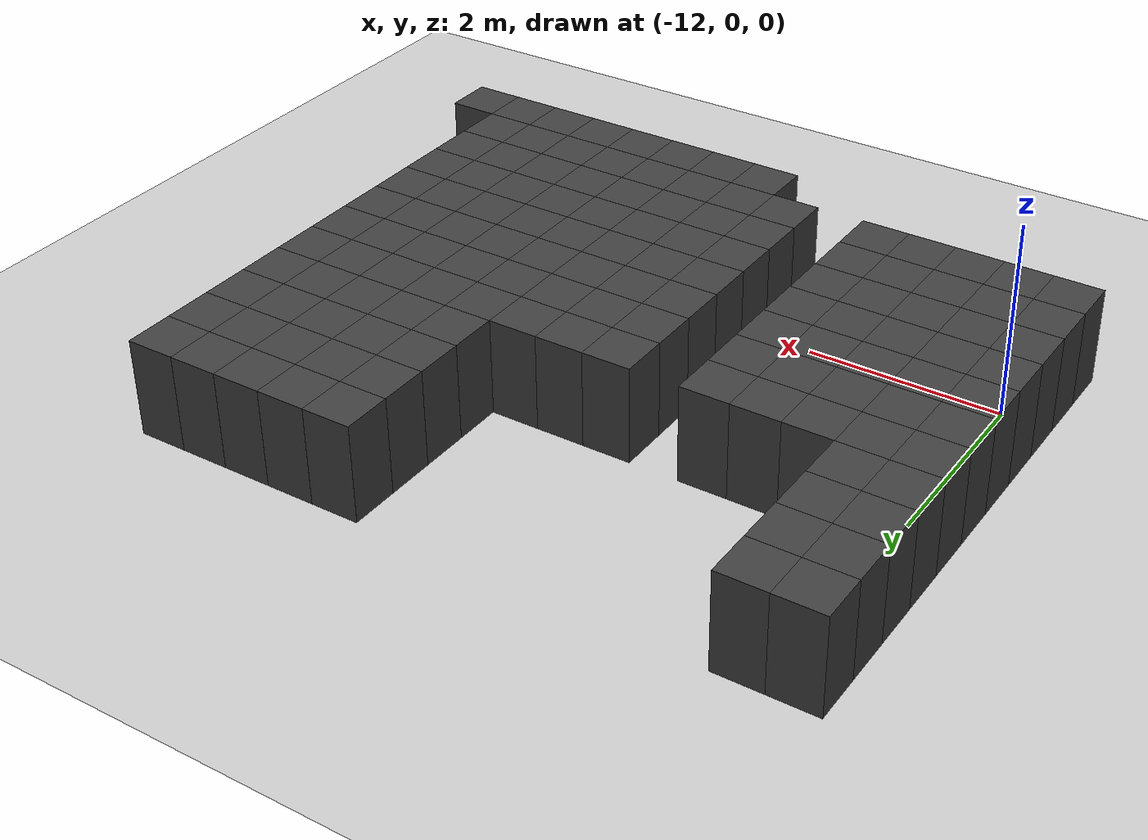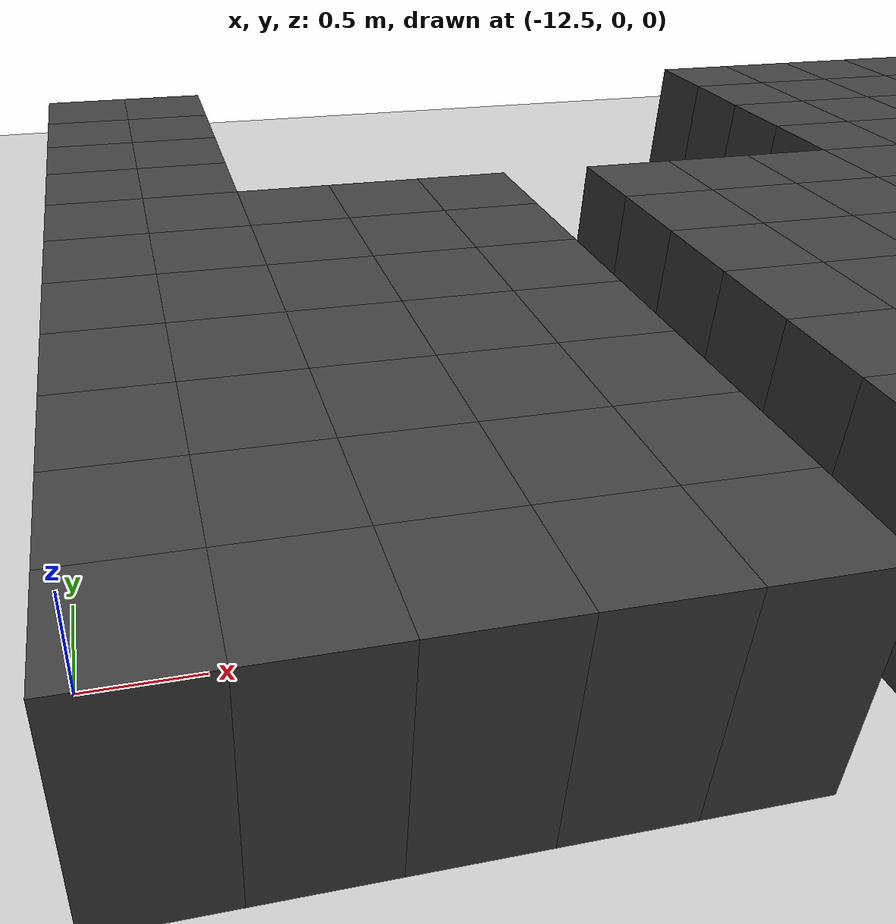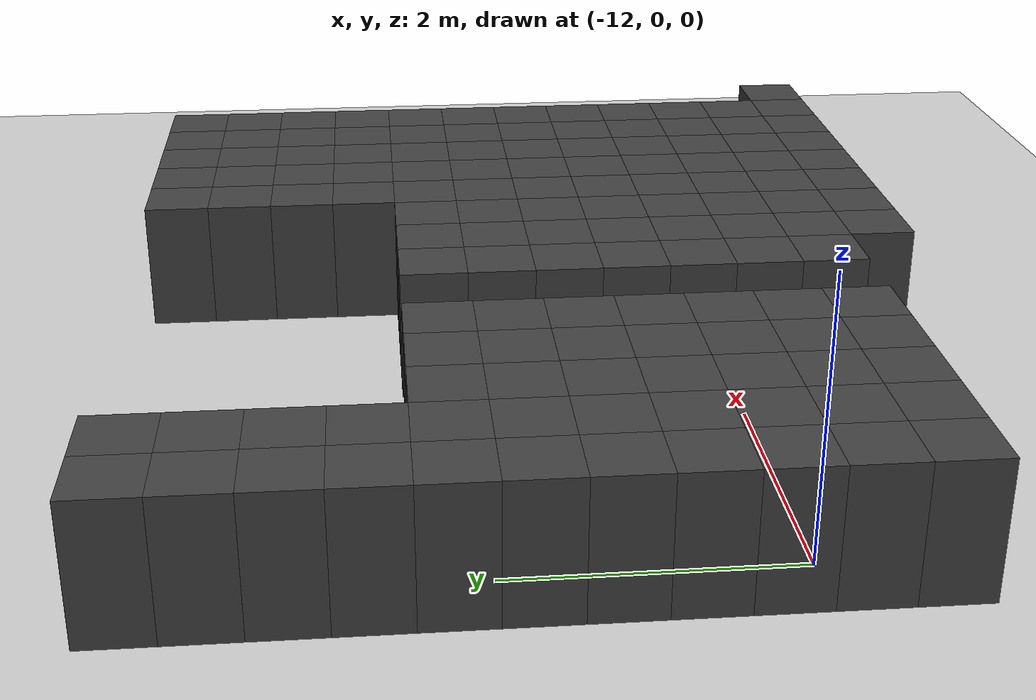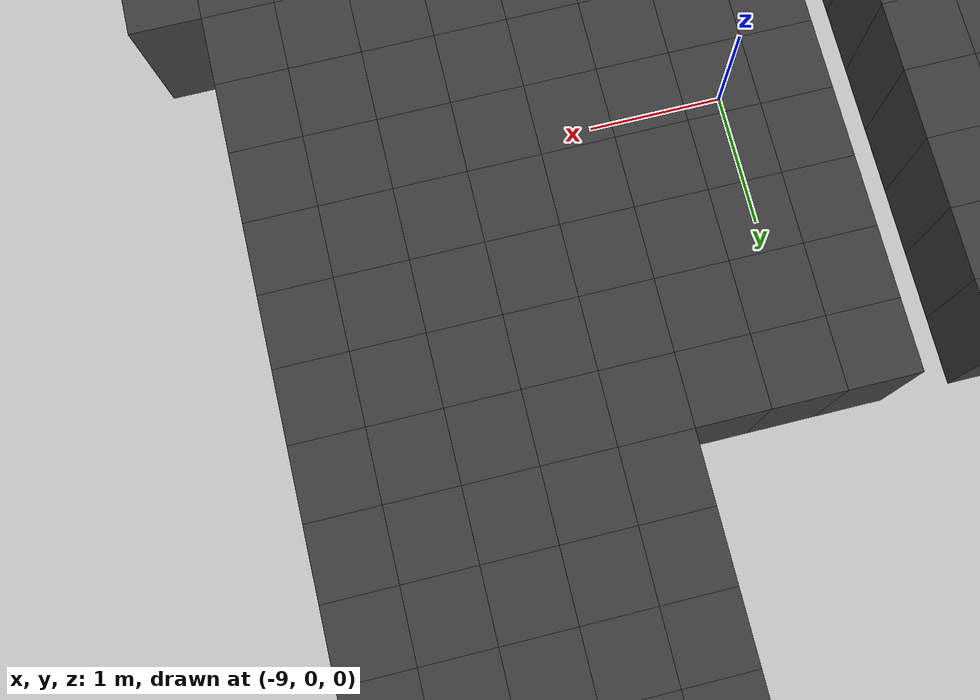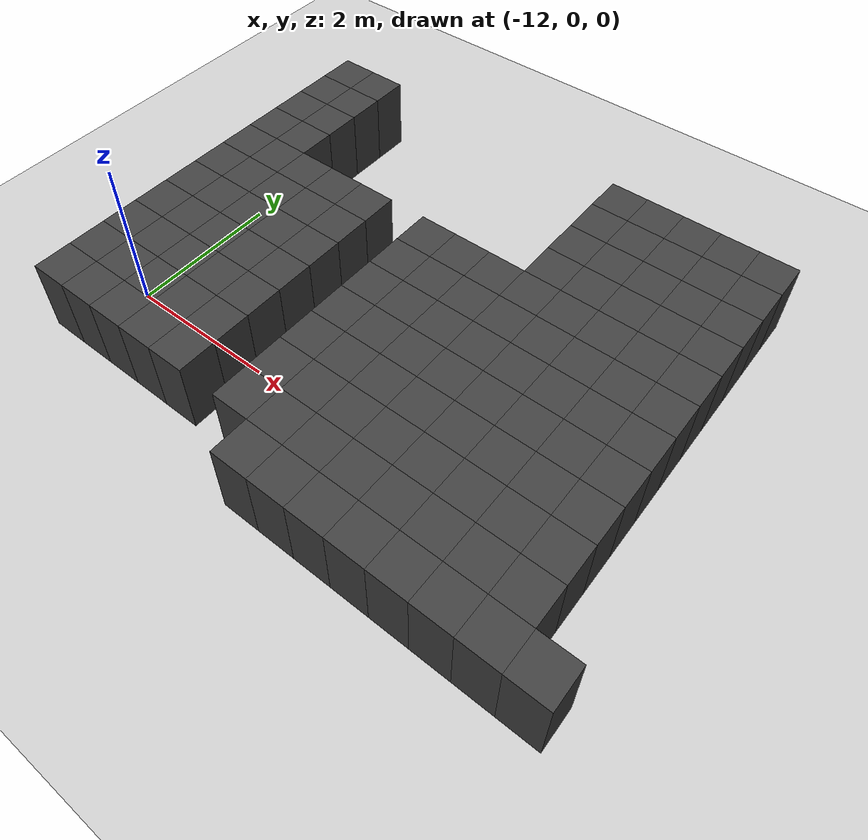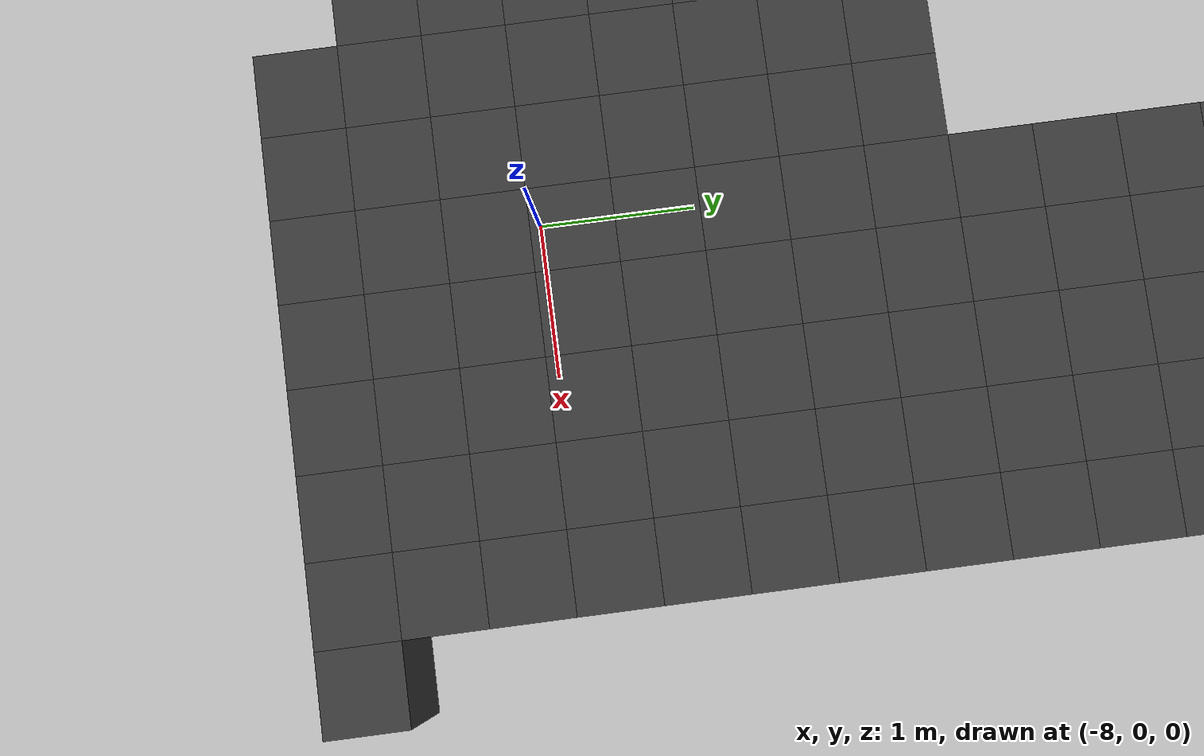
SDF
<sdf version="1.7">
 <world name="map_14056">
  <model name="ground_plane">
   <static>true</static>
   <link name="link">
    <collision name="collision">
     <geometry><plane><normal>0 0 1</normal><size>200 200</size></plane></geometry>
    </collision>
    <visual name="visual">
     <geometry><plane><normal>0 0 1</normal><size>200 200</size></plane></geometry>
     <material><ambient>0.8 0.8 0.8 1</ambient><diffuse>0.8 0.8 0.8 1</diffuse></material>
    </visual>
   </link>
  </model>
  <model name="maze_environment">
   <static>true</static>
   <link name="wall_526">
    <pose>-12.250 4.250 0.500 0 0 0</pose>
    <collision name="col"><geometry><box><size>0.5 0.5 1.0</size></box></geometry></collision>
    <visual name="vis">
     <geometry><box><size>0.5 0.5 1.0</size></box></geometry>
     <material><ambient>0.15 0.15 0.15 1</ambient><diffuse>0.25 0.25 0.25 1</diffuse></material>
    </visual>
   </link>
   <link name="wall_527">
    <pose>-11.750 4.250 0.500 0 0 0</pose>
    <collision name="col"><geometry><box><size>0.5 0.5 1.0</size></box></geometry></collision>
    <visual name="vis">
     <geometry><box><size>0.5 0.5 1.0</size></box></geometry>
     <material><ambient>0.15 0.15 0.15 1</ambient><diffuse>0.25 0.25 0.25 1</diffuse></material>
    </visual>
   </link>
   <link name="wall_528">
    <pose>-7.750 4.250 0.500 0 0 0</pose>
    <collision name="col"><geometry><box><size>0.5 0.5 1.0</size></box></geometry></collision>
    <visual name="vis">
     <geometry><box><size>0.5 0.5 1.0</size></box></geometry>
     <material><ambient>0.15 0.15 0.15 1</ambient><diffuse>0.25 0.25 0.25 1</diffuse></material>
    </visual>
   </link>
   <link name="wall_529">
    <pose>-7.250 4.250 0.500 0 0 0</pose>
    <collision name="col"><geometry><box><size>0.5 0.5 1.0</size></box></geometry></collision>
    <visual name="vis">
     <geometry><box><size>0.5 0.5 1.0</size></box></geometry>
     <material><ambient>0.15 0.15 0.15 1</ambient><diffuse>0.25 0.25 0.25 1</diffuse></material>
    </visual>
   </link>
   <link name="wall_530">
    <pose>-6.750 4.250 0.500 0 0 0</pose>
    <collision name="col"><geometry><box><size>0.5 0.5 1.0</size></box></geometry></collision>
    <visual name="vis">
     <geometry><box><size>0.5 0.5 1.0</size></box></geometry>
     <material><ambient>0.15 0.15 0.15 1</ambient><diffuse>0.25 0.25 0.25 1</diffuse></material>
    </visual>
   </link>
   <link name="wall_531">
    <pose>-6.250 4.250 0.500 0 0 0</pose>
    <collision name="col"><geometry><box><size>0.5 0.5 1.0</size></box></geometry></collision>
    <visual name="vis">
     <geometry><box><size>0.5 0.5 1.0</size></box></geometry>
     <material><ambient>0.15 0.15 0.15 1</ambient><diffuse>0.25 0.25 0.25 1</diffuse></material>
    </visual>
   </link>
   <link name="wall_532">
    <pose>-5.750 4.250 0.500 0 0 0</pose>
    <collision name="col"><geometry><box><size>0.5 0.5 1.0</size></box></geometry></collision>
    <visual name="vis">
     <geometry><box><size>0.5 0.5 1.0</size></box></geometry>
     <material><ambient>0.15 0.15 0.15 1</ambient><diffuse>0.25 0.25 0.25 1</diffuse></material>
    </visual>
   </link>
   <link name="wall_568">
    <pose>-12.250 3.750 0.500 0 0 0</pose>
    <collision name="col"><geometry><box><size>0.5 0.5 1.0</size></box></geometry></collision>
    <visual name="vis">
     <geometry><box><size>0.5 0.5 1.0</size></box></geometry>
     <material><ambient>0.15 0.15 0.15 1</ambient><diffuse>0.25 0.25 0.25 1</diffuse></material>
    </visual>
   </link>
   <link name="wall_569">
    <pose>-11.750 3.750 0.500 0 0 0</pose>
    <collision name="col"><geometry><box><size>0.5 0.5 1.0</size></box></geometry></collision>
    <visual name="vis">
     <geometry><box><size>0.5 0.5 1.0</size></box></geometry>
     <material><ambient>0.15 0.15 0.15 1</ambient><diffuse>0.25 0.25 0.25 1</diffuse></material>
    </visual>
   </link>
   <link name="wall_570">
    <pose>-7.750 3.750 0.500 0 0 0</pose>
    <collision name="col"><geometry><box><size>0.5 0.5 1.0</size></box></geometry></collision>
    <visual name="vis">
     <geometry><box><size>0.5 0.5 1.0</size></box></geometry>
     <material><ambient>0.15 0.15 0.15 1</ambient><diffuse>0.25 0.25 0.25 1</diffuse></material>
    </visual>
   </link>
   <link name="wall_571">
    <pose>-7.250 3.750 0.500 0 0 0</pose>
    <collision name="col"><geometry><box><size>0.5 0.5 1.0</size></box></geometry></collision>
    <visual name="vis">
     <geometry><box><size>0.5 0.5 1.0</size></box></geometry>
     <material><ambient>0.15 0.15 0.15 1</ambient><diffuse>0.25 0.25 0.25 1</diffuse></material>
    </visual>
   </link>
   <link name="wall_572">
    <pose>-6.750 3.750 0.500 0 0 0</pose>
    <collision name="col"><geometry><box><size>0.5 0.5 1.0</size></box></geometry></collision>
    <visual name="vis">
     <geometry><box><size>0.5 0.5 1.0</size></box></geometry>
     <material><ambient>0.15 0.15 0.15 1</ambient><diffuse>0.25 0.25 0.25 1</diffuse></material>
    </visual>
   </link>
   <link name="wall_573">
    <pose>-6.250 3.750 0.500 0 0 0</pose>
    <collision name="col"><geometry><box><size>0.5 0.5 1.0</size></box></geometry></collision>
    <visual name="vis">
     <geometry><box><size>0.5 0.5 1.0</size></box></geometry>
     <material><ambient>0.15 0.15 0.15 1</ambient><diffuse>0.25 0.25 0.25 1</diffuse></material>
    </visual>
   </link>
   <link name="wall_574">
    <pose>-5.750 3.750 0.500 0 0 0</pose>
    <collision name="col"><geometry><box><size>0.5 0.5 1.0</size></box></geometry></collision>
    <visual name="vis">
     <geometry><box><size>0.5 0.5 1.0</size></box></geometry>
     <material><ambient>0.15 0.15 0.15 1</ambient><diffuse>0.25 0.25 0.25 1</diffuse></material>
    </visual>
   </link>
   <link name="wall_605">
    <pose>-12.250 3.250 0.500 0 0 0</pose>
    <collision name="col"><geometry><box><size>0.5 0.5 1.0</size></box></geometry></collision>
    <visual name="vis">
     <geometry><box><size>0.5 0.5 1.0</size></box></geometry>
     <material><ambient>0.15 0.15 0.15 1</ambient><diffuse>0.25 0.25 0.25 1</diffuse></material>
    </visual>
   </link>
   <link name="wall_606">
    <pose>-11.750 3.250 0.500 0 0 0</pose>
    <collision name="col"><geometry><box><size>0.5 0.5 1.0</size></box></geometry></collision>
    <visual name="vis">
     <geometry><box><size>0.5 0.5 1.0</size></box></geometry>
     <material><ambient>0.15 0.15 0.15 1</ambient><diffuse>0.25 0.25 0.25 1</diffuse></material>
    </visual>
   </link>
   <link name="wall_607">
    <pose>-7.750 3.250 0.500 0 0 0</pose>
    <collision name="col"><geometry><box><size>0.5 0.5 1.0</size></box></geometry></collision>
    <visual name="vis">
     <geometry><box><size>0.5 0.5 1.0</size></box></geometry>
     <material><ambient>0.15 0.15 0.15 1</ambient><diffuse>0.25 0.25 0.25 1</diffuse></material>
    </visual>
   </link>
   <link name="wall_608">
    <pose>-7.250 3.250 0.500 0 0 0</pose>
    <collision name="col"><geometry><box><size>0.5 0.5 1.0</size></box></geometry></collision>
    <visual name="vis">
     <geometry><box><size>0.5 0.5 1.0</size></box></geometry>
     <material><ambient>0.15 0.15 0.15 1</ambient><diffuse>0.25 0.25 0.25 1</diffuse></material>
    </visual>
   </link>
   <link name="wall_609">
    <pose>-6.750 3.250 0.500 0 0 0</pose>
    <collision name="col"><geometry><box><size>0.5 0.5 1.0</size></box></geometry></collision>
    <visual name="vis">
     <geometry><box><size>0.5 0.5 1.0</size></box></geometry>
     <material><ambient>0.15 0.15 0.15 1</ambient><diffuse>0.25 0.25 0.25 1</diffuse></material>
    </visual>
   </link>
   <link name="wall_610">
    <pose>-6.250 3.250 0.500 0 0 0</pose>
    <collision name="col"><geometry><box><size>0.5 0.5 1.0</size></box></geometry></collision>
    <visual name="vis">
     <geometry><box><size>0.5 0.5 1.0</size></box></geometry>
     <material><ambient>0.15 0.15 0.15 1</ambient><diffuse>0.25 0.25 0.25 1</diffuse></material>
    </visual>
   </link>
   <link name="wall_611">
    <pose>-5.750 3.250 0.500 0 0 0</pose>
    <collision name="col"><geometry><box><size>0.5 0.5 1.0</size></box></geometry></collision>
    <visual name="vis">
     <geometry><box><size>0.5 0.5 1.0</size></box></geometry>
     <material><ambient>0.15 0.15 0.15 1</ambient><diffuse>0.25 0.25 0.25 1</diffuse></material>
    </visual>
   </link>
   <link name="wall_639">
    <pose>-12.250 2.750 0.500 0 0 0</pose>
    <collision name="col"><geometry><box><size>0.5 0.5 1.0</size></box></geometry></collision>
    <visual name="vis">
     <geometry><box><size>0.5 0.5 1.0</size></box></geometry>
     <material><ambient>0.15 0.15 0.15 1</ambient><diffuse>0.25 0.25 0.25 1</diffuse></material>
    </visual>
   </link>
   <link name="wall_640">
    <pose>-11.750 2.750 0.500 0 0 0</pose>
    <collision name="col"><geometry><box><size>0.5 0.5 1.0</size></box></geometry></collision>
    <visual name="vis">
     <geometry><box><size>0.5 0.5 1.0</size></box></geometry>
     <material><ambient>0.15 0.15 0.15 1</ambient><diffuse>0.25 0.25 0.25 1</diffuse></material>
    </visual>
   </link>
   <link name="wall_641">
    <pose>-7.750 2.750 0.500 0 0 0</pose>
    <collision name="col"><geometry><box><size>0.5 0.5 1.0</size></box></geometry></collision>
    <visual name="vis">
     <geometry><box><size>0.5 0.5 1.0</size></box></geometry>
     <material><ambient>0.15 0.15 0.15 1</ambient><diffuse>0.25 0.25 0.25 1</diffuse></material>
    </visual>
   </link>
   <link name="wall_642">
    <pose>-7.250 2.750 0.500 0 0 0</pose>
    <collision name="col"><geometry><box><size>0.5 0.5 1.0</size></box></geometry></collision>
    <visual name="vis">
     <geometry><box><size>0.5 0.5 1.0</size></box></geometry>
     <material><ambient>0.15 0.15 0.15 1</ambient><diffuse>0.25 0.25 0.25 1</diffuse></material>
    </visual>
   </link>
   <link name="wall_643">
    <pose>-6.750 2.750 0.500 0 0 0</pose>
    <collision name="col"><geometry><box><size>0.5 0.5 1.0</size></box></geometry></collision>
    <visual name="vis">
     <geometry><box><size>0.5 0.5 1.0</size></box></geometry>
     <material><ambient>0.15 0.15 0.15 1</ambient><diffuse>0.25 0.25 0.25 1</diffuse></material>
    </visual>
   </link>
   <link name="wall_644">
    <pose>-6.250 2.750 0.500 0 0 0</pose>
    <collision name="col"><geometry><box><size>0.5 0.5 1.0</size></box></geometry></collision>
    <visual name="vis">
     <geometry><box><size>0.5 0.5 1.0</size></box></geometry>
     <material><ambient>0.15 0.15 0.15 1</ambient><diffuse>0.25 0.25 0.25 1</diffuse></material>
    </visual>
   </link>
   <link name="wall_645">
    <pose>-5.750 2.750 0.500 0 0 0</pose>
    <collision name="col"><geometry><box><size>0.5 0.5 1.0</size></box></geometry></collision>
    <visual name="vis">
     <geometry><box><size>0.5 0.5 1.0</size></box></geometry>
     <material><ambient>0.15 0.15 0.15 1</ambient><diffuse>0.25 0.25 0.25 1</diffuse></material>
    </visual>
   </link>
   <link name="wall_673">
    <pose>-12.250 2.250 0.500 0 0 0</pose>
    <collision name="col"><geometry><box><size>0.5 0.5 1.0</size></box></geometry></collision>
    <visual name="vis">
     <geometry><box><size>0.5 0.5 1.0</size></box></geometry>
     <material><ambient>0.15 0.15 0.15 1</ambient><diffuse>0.25 0.25 0.25 1</diffuse></material>
    </visual>
   </link>
   <link name="wall_674">
    <pose>-11.750 2.250 0.500 0 0 0</pose>
    <collision name="col"><geometry><box><size>0.5 0.5 1.0</size></box></geometry></collision>
    <visual name="vis">
     <geometry><box><size>0.5 0.5 1.0</size></box></geometry>
     <material><ambient>0.15 0.15 0.15 1</ambient><diffuse>0.25 0.25 0.25 1</diffuse></material>
    </visual>
   </link>
   <link name="wall_675">
    <pose>-11.250 2.250 0.500 0 0 0</pose>
    <collision name="col"><geometry><box><size>0.5 0.5 1.0</size></box></geometry></collision>
    <visual name="vis">
     <geometry><box><size>0.5 0.5 1.0</size></box></geometry>
     <material><ambient>0.15 0.15 0.15 1</ambient><diffuse>0.25 0.25 0.25 1</diffuse></material>
    </visual>
   </link>
   <link name="wall_676">
    <pose>-10.750 2.250 0.500 0 0 0</pose>
    <collision name="col"><geometry><box><size>0.5 0.5 1.0</size></box></geometry></collision>
    <visual name="vis">
     <geometry><box><size>0.5 0.5 1.0</size></box></geometry>
     <material><ambient>0.15 0.15 0.15 1</ambient><diffuse>0.25 0.25 0.25 1</diffuse></material>
    </visual>
   </link>
   <link name="wall_677">
    <pose>-10.250 2.250 0.500 0 0 0</pose>
    <collision name="col"><geometry><box><size>0.5 0.5 1.0</size></box></geometry></collision>
    <visual name="vis">
     <geometry><box><size>0.5 0.5 1.0</size></box></geometry>
     <material><ambient>0.15 0.15 0.15 1</ambient><diffuse>0.25 0.25 0.25 1</diffuse></material>
    </visual>
   </link>
   <link name="wall_678">
    <pose>-9.250 2.250 0.500 0 0 0</pose>
    <collision name="col"><geometry><box><size>0.5 0.5 1.0</size></box></geometry></collision>
    <visual name="vis">
     <geometry><box><size>0.5 0.5 1.0</size></box></geometry>
     <material><ambient>0.15 0.15 0.15 1</ambient><diffuse>0.25 0.25 0.25 1</diffuse></material>
    </visual>
   </link>
   <link name="wall_679">
    <pose>-8.750 2.250 0.500 0 0 0</pose>
    <collision name="col"><geometry><box><size>0.5 0.5 1.0</size></box></geometry></collision>
    <visual name="vis">
     <geometry><box><size>0.5 0.5 1.0</size></box></geometry>
     <material><ambient>0.15 0.15 0.15 1</ambient><diffuse>0.25 0.25 0.25 1</diffuse></material>
    </visual>
   </link>
   <link name="wall_680">
    <pose>-8.250 2.250 0.500 0 0 0</pose>
    <collision name="col"><geometry><box><size>0.5 0.5 1.0</size></box></geometry></collision>
    <visual name="vis">
     <geometry><box><size>0.5 0.5 1.0</size></box></geometry>
     <material><ambient>0.15 0.15 0.15 1</ambient><diffuse>0.25 0.25 0.25 1</diffuse></material>
    </visual>
   </link>
   <link name="wall_681">
    <pose>-7.750 2.250 0.500 0 0 0</pose>
    <collision name="col"><geometry><box><size>0.5 0.5 1.0</size></box></geometry></collision>
    <visual name="vis">
     <geometry><box><size>0.5 0.5 1.0</size></box></geometry>
     <material><ambient>0.15 0.15 0.15 1</ambient><diffuse>0.25 0.25 0.25 1</diffuse></material>
    </visual>
   </link>
   <link name="wall_682">
    <pose>-7.250 2.250 0.500 0 0 0</pose>
    <collision name="col"><geometry><box><size>0.5 0.5 1.0</size></box></geometry></collision>
    <visual name="vis">
     <geometry><box><size>0.5 0.5 1.0</size></box></geometry>
     <material><ambient>0.15 0.15 0.15 1</ambient><diffuse>0.25 0.25 0.25 1</diffuse></material>
    </visual>
   </link>
   <link name="wall_683">
    <pose>-6.750 2.250 0.500 0 0 0</pose>
    <collision name="col"><geometry><box><size>0.5 0.5 1.0</size></box></geometry></collision>
    <visual name="vis">
     <geometry><box><size>0.5 0.5 1.0</size></box></geometry>
     <material><ambient>0.15 0.15 0.15 1</ambient><diffuse>0.25 0.25 0.25 1</diffuse></material>
    </visual>
   </link>
   <link name="wall_684">
    <pose>-6.250 2.250 0.500 0 0 0</pose>
    <collision name="col"><geometry><box><size>0.5 0.5 1.0</size></box></geometry></collision>
    <visual name="vis">
     <geometry><box><size>0.5 0.5 1.0</size></box></geometry>
     <material><ambient>0.15 0.15 0.15 1</ambient><diffuse>0.25 0.25 0.25 1</diffuse></material>
    </visual>
   </link>
   <link name="wall_685">
    <pose>-5.750 2.250 0.500 0 0 0</pose>
    <collision name="col"><geometry><box><size>0.5 0.5 1.0</size></box></geometry></collision>
    <visual name="vis">
     <geometry><box><size>0.5 0.5 1.0</size></box></geometry>
     <material><ambient>0.15 0.15 0.15 1</ambient><diffuse>0.25 0.25 0.25 1</diffuse></material>
    </visual>
   </link>
   <link name="wall_714">
    <pose>-12.250 1.750 0.500 0 0 0</pose>
    <collision name="col"><geometry><box><size>0.5 0.5 1.0</size></box></geometry></collision>
    <visual name="vis">
     <geometry><box><size>0.5 0.5 1.0</size></box></geometry>
     <material><ambient>0.15 0.15 0.15 1</ambient><diffuse>0.25 0.25 0.25 1</diffuse></material>
    </visual>
   </link>
   <link name="wall_715">
    <pose>-11.750 1.750 0.500 0 0 0</pose>
    <collision name="col"><geometry><box><size>0.5 0.5 1.0</size></box></geometry></collision>
    <visual name="vis">
     <geometry><box><size>0.5 0.5 1.0</size></box></geometry>
     <material><ambient>0.15 0.15 0.15 1</ambient><diffuse>0.25 0.25 0.25 1</diffuse></material>
    </visual>
   </link>
   <link name="wall_716">
    <pose>-11.250 1.750 0.500 0 0 0</pose>
    <collision name="col"><geometry><box><size>0.5 0.5 1.0</size></box></geometry></collision>
    <visual name="vis">
     <geometry><box><size>0.5 0.5 1.0</size></box></geometry>
     <material><ambient>0.15 0.15 0.15 1</ambient><diffuse>0.25 0.25 0.25 1</diffuse></material>
    </visual>
   </link>
   <link name="wall_717">
    <pose>-10.750 1.750 0.500 0 0 0</pose>
    <collision name="col"><geometry><box><size>0.5 0.5 1.0</size></box></geometry></collision>
    <visual name="vis">
     <geometry><box><size>0.5 0.5 1.0</size></box></geometry>
     <material><ambient>0.15 0.15 0.15 1</ambient><diffuse>0.25 0.25 0.25 1</diffuse></material>
    </visual>
   </link>
   <link name="wall_718">
    <pose>-10.250 1.750 0.500 0 0 0</pose>
    <collision name="col"><geometry><box><size>0.5 0.5 1.0</size></box></geometry></collision>
    <visual name="vis">
     <geometry><box><size>0.5 0.5 1.0</size></box></geometry>
     <material><ambient>0.15 0.15 0.15 1</ambient><diffuse>0.25 0.25 0.25 1</diffuse></material>
    </visual>
   </link>
   <link name="wall_719">
    <pose>-9.250 1.750 0.500 0 0 0</pose>
    <collision name="col"><geometry><box><size>0.5 0.5 1.0</size></box></geometry></collision>
    <visual name="vis">
     <geometry><box><size>0.5 0.5 1.0</size></box></geometry>
     <material><ambient>0.15 0.15 0.15 1</ambient><diffuse>0.25 0.25 0.25 1</diffuse></material>
    </visual>
   </link>
   <link name="wall_720">
    <pose>-8.750 1.750 0.500 0 0 0</pose>
    <collision name="col"><geometry><box><size>0.5 0.5 1.0</size></box></geometry></collision>
    <visual name="vis">
     <geometry><box><size>0.5 0.5 1.0</size></box></geometry>
     <material><ambient>0.15 0.15 0.15 1</ambient><diffuse>0.25 0.25 0.25 1</diffuse></material>
    </visual>
   </link>
   <link name="wall_721">
    <pose>-8.250 1.750 0.500 0 0 0</pose>
    <collision name="col"><geometry><box><size>0.5 0.5 1.0</size></box></geometry></collision>
    <visual name="vis">
     <geometry><box><size>0.5 0.5 1.0</size></box></geometry>
     <material><ambient>0.15 0.15 0.15 1</ambient><diffuse>0.25 0.25 0.25 1</diffuse></material>
    </visual>
   </link>
   <link name="wall_722">
    <pose>-7.750 1.750 0.500 0 0 0</pose>
    <collision name="col"><geometry><box><size>0.5 0.5 1.0</size></box></geometry></collision>
    <visual name="vis">
     <geometry><box><size>0.5 0.5 1.0</size></box></geometry>
     <material><ambient>0.15 0.15 0.15 1</ambient><diffuse>0.25 0.25 0.25 1</diffuse></material>
    </visual>
   </link>
   <link name="wall_723">
    <pose>-7.250 1.750 0.500 0 0 0</pose>
    <collision name="col"><geometry><box><size>0.5 0.5 1.0</size></box></geometry></collision>
    <visual name="vis">
     <geometry><box><size>0.5 0.5 1.0</size></box></geometry>
     <material><ambient>0.15 0.15 0.15 1</ambient><diffuse>0.25 0.25 0.25 1</diffuse></material>
    </visual>
   </link>
   <link name="wall_724">
    <pose>-6.750 1.750 0.500 0 0 0</pose>
    <collision name="col"><geometry><box><size>0.5 0.5 1.0</size></box></geometry></collision>
    <visual name="vis">
     <geometry><box><size>0.5 0.5 1.0</size></box></geometry>
     <material><ambient>0.15 0.15 0.15 1</ambient><diffuse>0.25 0.25 0.25 1</diffuse></material>
    </visual>
   </link>
   <link name="wall_725">
    <pose>-6.250 1.750 0.500 0 0 0</pose>
    <collision name="col"><geometry><box><size>0.5 0.5 1.0</size></box></geometry></collision>
    <visual name="vis">
     <geometry><box><size>0.5 0.5 1.0</size></box></geometry>
     <material><ambient>0.15 0.15 0.15 1</ambient><diffuse>0.25 0.25 0.25 1</diffuse></material>
    </visual>
   </link>
   <link name="wall_726">
    <pose>-5.750 1.750 0.500 0 0 0</pose>
    <collision name="col"><geometry><box><size>0.5 0.5 1.0</size></box></geometry></collision>
    <visual name="vis">
     <geometry><box><size>0.5 0.5 1.0</size></box></geometry>
     <material><ambient>0.15 0.15 0.15 1</ambient><diffuse>0.25 0.25 0.25 1</diffuse></material>
    </visual>
   </link>
   <link name="wall_755">
    <pose>-12.250 1.250 0.500 0 0 0</pose>
    <collision name="col"><geometry><box><size>0.5 0.5 1.0</size></box></geometry></collision>
    <visual name="vis">
     <geometry><box><size>0.5 0.5 1.0</size></box></geometry>
     <material><ambient>0.15 0.15 0.15 1</ambient><diffuse>0.25 0.25 0.25 1</diffuse></material>
    </visual>
   </link>
   <link name="wall_756">
    <pose>-11.750 1.250 0.500 0 0 0</pose>
    <collision name="col"><geometry><box><size>0.5 0.5 1.0</size></box></geometry></collision>
    <visual name="vis">
     <geometry><box><size>0.5 0.5 1.0</size></box></geometry>
     <material><ambient>0.15 0.15 0.15 1</ambient><diffuse>0.25 0.25 0.25 1</diffuse></material>
    </visual>
   </link>
   <link name="wall_757">
    <pose>-11.250 1.250 0.500 0 0 0</pose>
    <collision name="col"><geometry><box><size>0.5 0.5 1.0</size></box></geometry></collision>
    <visual name="vis">
     <geometry><box><size>0.5 0.5 1.0</size></box></geometry>
     <material><ambient>0.15 0.15 0.15 1</ambient><diffuse>0.25 0.25 0.25 1</diffuse></material>
    </visual>
   </link>
   <link name="wall_758">
    <pose>-10.750 1.250 0.500 0 0 0</pose>
    <collision name="col"><geometry><box><size>0.5 0.5 1.0</size></box></geometry></collision>
    <visual name="vis">
     <geometry><box><size>0.5 0.5 1.0</size></box></geometry>
     <material><ambient>0.15 0.15 0.15 1</ambient><diffuse>0.25 0.25 0.25 1</diffuse></material>
    </visual>
   </link>
   <link name="wall_759">
    <pose>-10.250 1.250 0.500 0 0 0</pose>
    <collision name="col"><geometry><box><size>0.5 0.5 1.0</size></box></geometry></collision>
    <visual name="vis">
     <geometry><box><size>0.5 0.5 1.0</size></box></geometry>
     <material><ambient>0.15 0.15 0.15 1</ambient><diffuse>0.25 0.25 0.25 1</diffuse></material>
    </visual>
   </link>
   <link name="wall_760">
    <pose>-9.250 1.250 0.500 0 0 0</pose>
    <collision name="col"><geometry><box><size>0.5 0.5 1.0</size></box></geometry></collision>
    <visual name="vis">
     <geometry><box><size>0.5 0.5 1.0</size></box></geometry>
     <material><ambient>0.15 0.15 0.15 1</ambient><diffuse>0.25 0.25 0.25 1</diffuse></material>
    </visual>
   </link>
   <link name="wall_761">
    <pose>-8.750 1.250 0.500 0 0 0</pose>
    <collision name="col"><geometry><box><size>0.5 0.5 1.0</size></box></geometry></collision>
    <visual name="vis">
     <geometry><box><size>0.5 0.5 1.0</size></box></geometry>
     <material><ambient>0.15 0.15 0.15 1</ambient><diffuse>0.25 0.25 0.25 1</diffuse></material>
    </visual>
   </link>
   <link name="wall_762">
    <pose>-8.250 1.250 0.500 0 0 0</pose>
    <collision name="col"><geometry><box><size>0.5 0.5 1.0</size></box></geometry></collision>
    <visual name="vis">
     <geometry><box><size>0.5 0.5 1.0</size></box></geometry>
     <material><ambient>0.15 0.15 0.15 1</ambient><diffuse>0.25 0.25 0.25 1</diffuse></material>
    </visual>
   </link>
   <link name="wall_763">
    <pose>-7.750 1.250 0.500 0 0 0</pose>
    <collision name="col"><geometry><box><size>0.5 0.5 1.0</size></box></geometry></collision>
    <visual name="vis">
     <geometry><box><size>0.5 0.5 1.0</size></box></geometry>
     <material><ambient>0.15 0.15 0.15 1</ambient><diffuse>0.25 0.25 0.25 1</diffuse></material>
    </visual>
   </link>
   <link name="wall_764">
    <pose>-7.250 1.250 0.500 0 0 0</pose>
    <collision name="col"><geometry><box><size>0.5 0.5 1.0</size></box></geometry></collision>
    <visual name="vis">
     <geometry><box><size>0.5 0.5 1.0</size></box></geometry>
     <material><ambient>0.15 0.15 0.15 1</ambient><diffuse>0.25 0.25 0.25 1</diffuse></material>
    </visual>
   </link>
   <link name="wall_765">
    <pose>-6.750 1.250 0.500 0 0 0</pose>
    <collision name="col"><geometry><box><size>0.5 0.5 1.0</size></box></geometry></collision>
    <visual name="vis">
     <geometry><box><size>0.5 0.5 1.0</size></box></geometry>
     <material><ambient>0.15 0.15 0.15 1</ambient><diffuse>0.25 0.25 0.25 1</diffuse></material>
    </visual>
   </link>
   <link name="wall_766">
    <pose>-6.250 1.250 0.500 0 0 0</pose>
    <collision name="col"><geometry><box><size>0.5 0.5 1.0</size></box></geometry></collision>
    <visual name="vis">
     <geometry><box><size>0.5 0.5 1.0</size></box></geometry>
     <material><ambient>0.15 0.15 0.15 1</ambient><diffuse>0.25 0.25 0.25 1</diffuse></material>
    </visual>
   </link>
   <link name="wall_767">
    <pose>-5.750 1.250 0.500 0 0 0</pose>
    <collision name="col"><geometry><box><size>0.5 0.5 1.0</size></box></geometry></collision>
    <visual name="vis">
     <geometry><box><size>0.5 0.5 1.0</size></box></geometry>
     <material><ambient>0.15 0.15 0.15 1</ambient><diffuse>0.25 0.25 0.25 1</diffuse></material>
    </visual>
   </link>
   <link name="wall_796">
    <pose>-12.250 0.750 0.500 0 0 0</pose>
    <collision name="col"><geometry><box><size>0.5 0.5 1.0</size></box></geometry></collision>
    <visual name="vis">
     <geometry><box><size>0.5 0.5 1.0</size></box></geometry>
     <material><ambient>0.15 0.15 0.15 1</ambient><diffuse>0.25 0.25 0.25 1</diffuse></material>
    </visual>
   </link>
   <link name="wall_797">
    <pose>-11.750 0.750 0.500 0 0 0</pose>
    <collision name="col"><geometry><box><size>0.5 0.5 1.0</size></box></geometry></collision>
    <visual name="vis">
     <geometry><box><size>0.5 0.5 1.0</size></box></geometry>
     <material><ambient>0.15 0.15 0.15 1</ambient><diffuse>0.25 0.25 0.25 1</diffuse></material>
    </visual>
   </link>
   <link name="wall_798">
    <pose>-11.250 0.750 0.500 0 0 0</pose>
    <collision name="col"><geometry><box><size>0.5 0.5 1.0</size></box></geometry></collision>
    <visual name="vis">
     <geometry><box><size>0.5 0.5 1.0</size></box></geometry>
     <material><ambient>0.15 0.15 0.15 1</ambient><diffuse>0.25 0.25 0.25 1</diffuse></material>
    </visual>
   </link>
   <link name="wall_799">
    <pose>-10.750 0.750 0.500 0 0 0</pose>
    <collision name="col"><geometry><box><size>0.5 0.5 1.0</size></box></geometry></collision>
    <visual name="vis">
     <geometry><box><size>0.5 0.5 1.0</size></box></geometry>
     <material><ambient>0.15 0.15 0.15 1</ambient><diffuse>0.25 0.25 0.25 1</diffuse></material>
    </visual>
   </link>
   <link name="wall_800">
    <pose>-10.250 0.750 0.500 0 0 0</pose>
    <collision name="col"><geometry><box><size>0.5 0.5 1.0</size></box></geometry></collision>
    <visual name="vis">
     <geometry><box><size>0.5 0.5 1.0</size></box></geometry>
     <material><ambient>0.15 0.15 0.15 1</ambient><diffuse>0.25 0.25 0.25 1</diffuse></material>
    </visual>
   </link>
   <link name="wall_801">
    <pose>-9.250 0.750 0.500 0 0 0</pose>
    <collision name="col"><geometry><box><size>0.5 0.5 1.0</size></box></geometry></collision>
    <visual name="vis">
     <geometry><box><size>0.5 0.5 1.0</size></box></geometry>
     <material><ambient>0.15 0.15 0.15 1</ambient><diffuse>0.25 0.25 0.25 1</diffuse></material>
    </visual>
   </link>
   <link name="wall_802">
    <pose>-8.750 0.750 0.500 0 0 0</pose>
    <collision name="col"><geometry><box><size>0.5 0.5 1.0</size></box></geometry></collision>
    <visual name="vis">
     <geometry><box><size>0.5 0.5 1.0</size></box></geometry>
     <material><ambient>0.15 0.15 0.15 1</ambient><diffuse>0.25 0.25 0.25 1</diffuse></material>
    </visual>
   </link>
   <link name="wall_803">
    <pose>-8.250 0.750 0.500 0 0 0</pose>
    <collision name="col"><geometry><box><size>0.5 0.5 1.0</size></box></geometry></collision>
    <visual name="vis">
     <geometry><box><size>0.5 0.5 1.0</size></box></geometry>
     <material><ambient>0.15 0.15 0.15 1</ambient><diffuse>0.25 0.25 0.25 1</diffuse></material>
    </visual>
   </link>
   <link name="wall_804">
    <pose>-7.750 0.750 0.500 0 0 0</pose>
    <collision name="col"><geometry><box><size>0.5 0.5 1.0</size></box></geometry></collision>
    <visual name="vis">
     <geometry><box><size>0.5 0.5 1.0</size></box></geometry>
     <material><ambient>0.15 0.15 0.15 1</ambient><diffuse>0.25 0.25 0.25 1</diffuse></material>
    </visual>
   </link>
   <link name="wall_805">
    <pose>-7.250 0.750 0.500 0 0 0</pose>
    <collision name="col"><geometry><box><size>0.5 0.5 1.0</size></box></geometry></collision>
    <visual name="vis">
     <geometry><box><size>0.5 0.5 1.0</size></box></geometry>
     <material><ambient>0.15 0.15 0.15 1</ambient><diffuse>0.25 0.25 0.25 1</diffuse></material>
    </visual>
   </link>
   <link name="wall_806">
    <pose>-6.750 0.750 0.500 0 0 0</pose>
    <collision name="col"><geometry><box><size>0.5 0.5 1.0</size></box></geometry></collision>
    <visual name="vis">
     <geometry><box><size>0.5 0.5 1.0</size></box></geometry>
     <material><ambient>0.15 0.15 0.15 1</ambient><diffuse>0.25 0.25 0.25 1</diffuse></material>
    </visual>
   </link>
   <link name="wall_807">
    <pose>-6.250 0.750 0.500 0 0 0</pose>
    <collision name="col"><geometry><box><size>0.5 0.5 1.0</size></box></geometry></collision>
    <visual name="vis">
     <geometry><box><size>0.5 0.5 1.0</size></box></geometry>
     <material><ambient>0.15 0.15 0.15 1</ambient><diffuse>0.25 0.25 0.25 1</diffuse></material>
    </visual>
   </link>
   <link name="wall_808">
    <pose>-5.750 0.750 0.500 0 0 0</pose>
    <collision name="col"><geometry><box><size>0.5 0.5 1.0</size></box></geometry></collision>
    <visual name="vis">
     <geometry><box><size>0.5 0.5 1.0</size></box></geometry>
     <material><ambient>0.15 0.15 0.15 1</ambient><diffuse>0.25 0.25 0.25 1</diffuse></material>
    </visual>
   </link>
   <link name="wall_837">
    <pose>-12.250 0.250 0.500 0 0 0</pose>
    <collision name="col"><geometry><box><size>0.5 0.5 1.0</size></box></geometry></collision>
    <visual name="vis">
     <geometry><box><size>0.5 0.5 1.0</size></box></geometry>
     <material><ambient>0.15 0.15 0.15 1</ambient><diffuse>0.25 0.25 0.25 1</diffuse></material>
    </visual>
   </link>
   <link name="wall_838">
    <pose>-11.750 0.250 0.500 0 0 0</pose>
    <collision name="col"><geometry><box><size>0.5 0.5 1.0</size></box></geometry></collision>
    <visual name="vis">
     <geometry><box><size>0.5 0.5 1.0</size></box></geometry>
     <material><ambient>0.15 0.15 0.15 1</ambient><diffuse>0.25 0.25 0.25 1</diffuse></material>
    </visual>
   </link>
   <link name="wall_839">
    <pose>-11.250 0.250 0.500 0 0 0</pose>
    <collision name="col"><geometry><box><size>0.5 0.5 1.0</size></box></geometry></collision>
    <visual name="vis">
     <geometry><box><size>0.5 0.5 1.0</size></box></geometry>
     <material><ambient>0.15 0.15 0.15 1</ambient><diffuse>0.25 0.25 0.25 1</diffuse></material>
    </visual>
   </link>
   <link name="wall_840">
    <pose>-10.750 0.250 0.500 0 0 0</pose>
    <collision name="col"><geometry><box><size>0.5 0.5 1.0</size></box></geometry></collision>
    <visual name="vis">
     <geometry><box><size>0.5 0.5 1.0</size></box></geometry>
     <material><ambient>0.15 0.15 0.15 1</ambient><diffuse>0.25 0.25 0.25 1</diffuse></material>
    </visual>
   </link>
   <link name="wall_841">
    <pose>-10.250 0.250 0.500 0 0 0</pose>
    <collision name="col"><geometry><box><size>0.5 0.5 1.0</size></box></geometry></collision>
    <visual name="vis">
     <geometry><box><size>0.5 0.5 1.0</size></box></geometry>
     <material><ambient>0.15 0.15 0.15 1</ambient><diffuse>0.25 0.25 0.25 1</diffuse></material>
    </visual>
   </link>
   <link name="wall_842">
    <pose>-9.250 0.250 0.500 0 0 0</pose>
    <collision name="col"><geometry><box><size>0.5 0.5 1.0</size></box></geometry></collision>
    <visual name="vis">
     <geometry><box><size>0.5 0.5 1.0</size></box></geometry>
     <material><ambient>0.15 0.15 0.15 1</ambient><diffuse>0.25 0.25 0.25 1</diffuse></material>
    </visual>
   </link>
   <link name="wall_843">
    <pose>-8.750 0.250 0.500 0 0 0</pose>
    <collision name="col"><geometry><box><size>0.5 0.5 1.0</size></box></geometry></collision>
    <visual name="vis">
     <geometry><box><size>0.5 0.5 1.0</size></box></geometry>
     <material><ambient>0.15 0.15 0.15 1</ambient><diffuse>0.25 0.25 0.25 1</diffuse></material>
    </visual>
   </link>
   <link name="wall_844">
    <pose>-8.250 0.250 0.500 0 0 0</pose>
    <collision name="col"><geometry><box><size>0.5 0.5 1.0</size></box></geometry></collision>
    <visual name="vis">
     <geometry><box><size>0.5 0.5 1.0</size></box></geometry>
     <material><ambient>0.15 0.15 0.15 1</ambient><diffuse>0.25 0.25 0.25 1</diffuse></material>
    </visual>
   </link>
   <link name="wall_845">
    <pose>-7.750 0.250 0.500 0 0 0</pose>
    <collision name="col"><geometry><box><size>0.5 0.5 1.0</size></box></geometry></collision>
    <visual name="vis">
     <geometry><box><size>0.5 0.5 1.0</size></box></geometry>
     <material><ambient>0.15 0.15 0.15 1</ambient><diffuse>0.25 0.25 0.25 1</diffuse></material>
    </visual>
   </link>
   <link name="wall_846">
    <pose>-7.250 0.250 0.500 0 0 0</pose>
    <collision name="col"><geometry><box><size>0.5 0.5 1.0</size></box></geometry></collision>
    <visual name="vis">
     <geometry><box><size>0.5 0.5 1.0</size></box></geometry>
     <material><ambient>0.15 0.15 0.15 1</ambient><diffuse>0.25 0.25 0.25 1</diffuse></material>
    </visual>
   </link>
   <link name="wall_847">
    <pose>-6.750 0.250 0.500 0 0 0</pose>
    <collision name="col"><geometry><box><size>0.5 0.5 1.0</size></box></geometry></collision>
    <visual name="vis">
     <geometry><box><size>0.5 0.5 1.0</size></box></geometry>
     <material><ambient>0.15 0.15 0.15 1</ambient><diffuse>0.25 0.25 0.25 1</diffuse></material>
    </visual>
   </link>
   <link name="wall_848">
    <pose>-6.250 0.250 0.500 0 0 0</pose>
    <collision name="col"><geometry><box><size>0.5 0.5 1.0</size></box></geometry></collision>
    <visual name="vis">
     <geometry><box><size>0.5 0.5 1.0</size></box></geometry>
     <material><ambient>0.15 0.15 0.15 1</ambient><diffuse>0.25 0.25 0.25 1</diffuse></material>
    </visual>
   </link>
   <link name="wall_849">
    <pose>-5.750 0.250 0.500 0 0 0</pose>
    <collision name="col"><geometry><box><size>0.5 0.5 1.0</size></box></geometry></collision>
    <visual name="vis">
     <geometry><box><size>0.5 0.5 1.0</size></box></geometry>
     <material><ambient>0.15 0.15 0.15 1</ambient><diffuse>0.25 0.25 0.25 1</diffuse></material>
    </visual>
   </link>
   <link name="wall_878">
    <pose>-12.250 -0.250 0.500 0 0 0</pose>
    <collision name="col"><geometry><box><size>0.5 0.5 1.0</size></box></geometry></collision>
    <visual name="vis">
     <geometry><box><size>0.5 0.5 1.0</size></box></geometry>
     <material><ambient>0.15 0.15 0.15 1</ambient><diffuse>0.25 0.25 0.25 1</diffuse></material>
    </visual>
   </link>
   <link name="wall_879">
    <pose>-11.750 -0.250 0.500 0 0 0</pose>
    <collision name="col"><geometry><box><size>0.5 0.5 1.0</size></box></geometry></collision>
    <visual name="vis">
     <geometry><box><size>0.5 0.5 1.0</size></box></geometry>
     <material><ambient>0.15 0.15 0.15 1</ambient><diffuse>0.25 0.25 0.25 1</diffuse></material>
    </visual>
   </link>
   <link name="wall_880">
    <pose>-11.250 -0.250 0.500 0 0 0</pose>
    <collision name="col"><geometry><box><size>0.5 0.5 1.0</size></box></geometry></collision>
    <visual name="vis">
     <geometry><box><size>0.5 0.5 1.0</size></box></geometry>
     <material><ambient>0.15 0.15 0.15 1</ambient><diffuse>0.25 0.25 0.25 1</diffuse></material>
    </visual>
   </link>
   <link name="wall_881">
    <pose>-10.750 -0.250 0.500 0 0 0</pose>
    <collision name="col"><geometry><box><size>0.5 0.5 1.0</size></box></geometry></collision>
    <visual name="vis">
     <geometry><box><size>0.5 0.5 1.0</size></box></geometry>
     <material><ambient>0.15 0.15 0.15 1</ambient><diffuse>0.25 0.25 0.25 1</diffuse></material>
    </visual>
   </link>
   <link name="wall_882">
    <pose>-10.250 -0.250 0.500 0 0 0</pose>
    <collision name="col"><geometry><box><size>0.5 0.5 1.0</size></box></geometry></collision>
    <visual name="vis">
     <geometry><box><size>0.5 0.5 1.0</size></box></geometry>
     <material><ambient>0.15 0.15 0.15 1</ambient><diffuse>0.25 0.25 0.25 1</diffuse></material>
    </visual>
   </link>
   <link name="wall_883">
    <pose>-9.250 -0.250 0.500 0 0 0</pose>
    <collision name="col"><geometry><box><size>0.5 0.5 1.0</size></box></geometry></collision>
    <visual name="vis">
     <geometry><box><size>0.5 0.5 1.0</size></box></geometry>
     <material><ambient>0.15 0.15 0.15 1</ambient><diffuse>0.25 0.25 0.25 1</diffuse></material>
    </visual>
   </link>
   <link name="wall_884">
    <pose>-8.750 -0.250 0.500 0 0 0</pose>
    <collision name="col"><geometry><box><size>0.5 0.5 1.0</size></box></geometry></collision>
    <visual name="vis">
     <geometry><box><size>0.5 0.5 1.0</size></box></geometry>
     <material><ambient>0.15 0.15 0.15 1</ambient><diffuse>0.25 0.25 0.25 1</diffuse></material>
    </visual>
   </link>
   <link name="wall_885">
    <pose>-8.250 -0.250 0.500 0 0 0</pose>
    <collision name="col"><geometry><box><size>0.5 0.5 1.0</size></box></geometry></collision>
    <visual name="vis">
     <geometry><box><size>0.5 0.5 1.0</size></box></geometry>
     <material><ambient>0.15 0.15 0.15 1</ambient><diffuse>0.25 0.25 0.25 1</diffuse></material>
    </visual>
   </link>
   <link name="wall_886">
    <pose>-7.750 -0.250 0.500 0 0 0</pose>
    <collision name="col"><geometry><box><size>0.5 0.5 1.0</size></box></geometry></collision>
    <visual name="vis">
     <geometry><box><size>0.5 0.5 1.0</size></box></geometry>
     <material><ambient>0.15 0.15 0.15 1</ambient><diffuse>0.25 0.25 0.25 1</diffuse></material>
    </visual>
   </link>
   <link name="wall_887">
    <pose>-7.250 -0.250 0.500 0 0 0</pose>
    <collision name="col"><geometry><box><size>0.5 0.5 1.0</size></box></geometry></collision>
    <visual name="vis">
     <geometry><box><size>0.5 0.5 1.0</size></box></geometry>
     <material><ambient>0.15 0.15 0.15 1</ambient><diffuse>0.25 0.25 0.25 1</diffuse></material>
    </visual>
   </link>
   <link name="wall_888">
    <pose>-6.750 -0.250 0.500 0 0 0</pose>
    <collision name="col"><geometry><box><size>0.5 0.5 1.0</size></box></geometry></collision>
    <visual name="vis">
     <geometry><box><size>0.5 0.5 1.0</size></box></geometry>
     <material><ambient>0.15 0.15 0.15 1</ambient><diffuse>0.25 0.25 0.25 1</diffuse></material>
    </visual>
   </link>
   <link name="wall_889">
    <pose>-6.250 -0.250 0.500 0 0 0</pose>
    <collision name="col"><geometry><box><size>0.5 0.5 1.0</size></box></geometry></collision>
    <visual name="vis">
     <geometry><box><size>0.5 0.5 1.0</size></box></geometry>
     <material><ambient>0.15 0.15 0.15 1</ambient><diffuse>0.25 0.25 0.25 1</diffuse></material>
    </visual>
   </link>
   <link name="wall_890">
    <pose>-5.750 -0.250 0.500 0 0 0</pose>
    <collision name="col"><geometry><box><size>0.5 0.5 1.0</size></box></geometry></collision>
    <visual name="vis">
     <geometry><box><size>0.5 0.5 1.0</size></box></geometry>
     <material><ambient>0.15 0.15 0.15 1</ambient><diffuse>0.25 0.25 0.25 1</diffuse></material>
    </visual>
   </link>
   <link name="wall_919">
    <pose>-12.250 -0.750 0.500 0 0 0</pose>
    <collision name="col"><geometry><box><size>0.5 0.5 1.0</size></box></geometry></collision>
    <visual name="vis">
     <geometry><box><size>0.5 0.5 1.0</size></box></geometry>
     <material><ambient>0.15 0.15 0.15 1</ambient><diffuse>0.25 0.25 0.25 1</diffuse></material>
    </visual>
   </link>
   <link name="wall_920">
    <pose>-11.750 -0.750 0.500 0 0 0</pose>
    <collision name="col"><geometry><box><size>0.5 0.5 1.0</size></box></geometry></collision>
    <visual name="vis">
     <geometry><box><size>0.5 0.5 1.0</size></box></geometry>
     <material><ambient>0.15 0.15 0.15 1</ambient><diffuse>0.25 0.25 0.25 1</diffuse></material>
    </visual>
   </link>
   <link name="wall_921">
    <pose>-11.250 -0.750 0.500 0 0 0</pose>
    <collision name="col"><geometry><box><size>0.5 0.5 1.0</size></box></geometry></collision>
    <visual name="vis">
     <geometry><box><size>0.5 0.5 1.0</size></box></geometry>
     <material><ambient>0.15 0.15 0.15 1</ambient><diffuse>0.25 0.25 0.25 1</diffuse></material>
    </visual>
   </link>
   <link name="wall_922">
    <pose>-10.750 -0.750 0.500 0 0 0</pose>
    <collision name="col"><geometry><box><size>0.5 0.5 1.0</size></box></geometry></collision>
    <visual name="vis">
     <geometry><box><size>0.5 0.5 1.0</size></box></geometry>
     <material><ambient>0.15 0.15 0.15 1</ambient><diffuse>0.25 0.25 0.25 1</diffuse></material>
    </visual>
   </link>
   <link name="wall_923">
    <pose>-10.250 -0.750 0.500 0 0 0</pose>
    <collision name="col"><geometry><box><size>0.5 0.5 1.0</size></box></geometry></collision>
    <visual name="vis">
     <geometry><box><size>0.5 0.5 1.0</size></box></geometry>
     <material><ambient>0.15 0.15 0.15 1</ambient><diffuse>0.25 0.25 0.25 1</diffuse></material>
    </visual>
   </link>
   <link name="wall_924">
    <pose>-9.250 -0.750 0.500 0 0 0</pose>
    <collision name="col"><geometry><box><size>0.5 0.5 1.0</size></box></geometry></collision>
    <visual name="vis">
     <geometry><box><size>0.5 0.5 1.0</size></box></geometry>
     <material><ambient>0.15 0.15 0.15 1</ambient><diffuse>0.25 0.25 0.25 1</diffuse></material>
    </visual>
   </link>
   <link name="wall_925">
    <pose>-8.750 -0.750 0.500 0 0 0</pose>
    <collision name="col"><geometry><box><size>0.5 0.5 1.0</size></box></geometry></collision>
    <visual name="vis">
     <geometry><box><size>0.5 0.5 1.0</size></box></geometry>
     <material><ambient>0.15 0.15 0.15 1</ambient><diffuse>0.25 0.25 0.25 1</diffuse></material>
    </visual>
   </link>
   <link name="wall_926">
    <pose>-8.250 -0.750 0.500 0 0 0</pose>
    <collision name="col"><geometry><box><size>0.5 0.5 1.0</size></box></geometry></collision>
    <visual name="vis">
     <geometry><box><size>0.5 0.5 1.0</size></box></geometry>
     <material><ambient>0.15 0.15 0.15 1</ambient><diffuse>0.25 0.25 0.25 1</diffuse></material>
    </visual>
   </link>
   <link name="wall_927">
    <pose>-7.750 -0.750 0.500 0 0 0</pose>
    <collision name="col"><geometry><box><size>0.5 0.5 1.0</size></box></geometry></collision>
    <visual name="vis">
     <geometry><box><size>0.5 0.5 1.0</size></box></geometry>
     <material><ambient>0.15 0.15 0.15 1</ambient><diffuse>0.25 0.25 0.25 1</diffuse></material>
    </visual>
   </link>
   <link name="wall_928">
    <pose>-7.250 -0.750 0.500 0 0 0</pose>
    <collision name="col"><geometry><box><size>0.5 0.5 1.0</size></box></geometry></collision>
    <visual name="vis">
     <geometry><box><size>0.5 0.5 1.0</size></box></geometry>
     <material><ambient>0.15 0.15 0.15 1</ambient><diffuse>0.25 0.25 0.25 1</diffuse></material>
    </visual>
   </link>
   <link name="wall_929">
    <pose>-6.750 -0.750 0.500 0 0 0</pose>
    <collision name="col"><geometry><box><size>0.5 0.5 1.0</size></box></geometry></collision>
    <visual name="vis">
     <geometry><box><size>0.5 0.5 1.0</size></box></geometry>
     <material><ambient>0.15 0.15 0.15 1</ambient><diffuse>0.25 0.25 0.25 1</diffuse></material>
    </visual>
   </link>
   <link name="wall_930">
    <pose>-6.250 -0.750 0.500 0 0 0</pose>
    <collision name="col"><geometry><box><size>0.5 0.5 1.0</size></box></geometry></collision>
    <visual name="vis">
     <geometry><box><size>0.5 0.5 1.0</size></box></geometry>
     <material><ambient>0.15 0.15 0.15 1</ambient><diffuse>0.25 0.25 0.25 1</diffuse></material>
    </visual>
   </link>
   <link name="wall_931">
    <pose>-5.750 -0.750 0.500 0 0 0</pose>
    <collision name="col"><geometry><box><size>0.5 0.5 1.0</size></box></geometry></collision>
    <visual name="vis">
     <geometry><box><size>0.5 0.5 1.0</size></box></geometry>
     <material><ambient>0.15 0.15 0.15 1</ambient><diffuse>0.25 0.25 0.25 1</diffuse></material>
    </visual>
   </link>
   <link name="wall_966">
    <pose>-8.750 -1.250 0.500 0 0 0</pose>
    <collision name="col"><geometry><box><size>0.5 0.5 1.0</size></box></geometry></collision>
    <visual name="vis">
     <geometry><box><size>0.5 0.5 1.0</size></box></geometry>
     <material><ambient>0.15 0.15 0.15 1</ambient><diffuse>0.25 0.25 0.25 1</diffuse></material>
    </visual>
   </link>
   <link name="wall_967">
    <pose>-8.250 -1.250 0.500 0 0 0</pose>
    <collision name="col"><geometry><box><size>0.5 0.5 1.0</size></box></geometry></collision>
    <visual name="vis">
     <geometry><box><size>0.5 0.5 1.0</size></box></geometry>
     <material><ambient>0.15 0.15 0.15 1</ambient><diffuse>0.25 0.25 0.25 1</diffuse></material>
    </visual>
   </link>
   <link name="wall_968">
    <pose>-7.750 -1.250 0.500 0 0 0</pose>
    <collision name="col"><geometry><box><size>0.5 0.5 1.0</size></box></geometry></collision>
    <visual name="vis">
     <geometry><box><size>0.5 0.5 1.0</size></box></geometry>
     <material><ambient>0.15 0.15 0.15 1</ambient><diffuse>0.25 0.25 0.25 1</diffuse></material>
    </visual>
   </link>
   <link name="wall_969">
    <pose>-7.250 -1.250 0.500 0 0 0</pose>
    <collision name="col"><geometry><box><size>0.5 0.5 1.0</size></box></geometry></collision>
    <visual name="vis">
     <geometry><box><size>0.5 0.5 1.0</size></box></geometry>
     <material><ambient>0.15 0.15 0.15 1</ambient><diffuse>0.25 0.25 0.25 1</diffuse></material>
    </visual>
   </link>
   <link name="wall_970">
    <pose>-6.750 -1.250 0.500 0 0 0</pose>
    <collision name="col"><geometry><box><size>0.5 0.5 1.0</size></box></geometry></collision>
    <visual name="vis">
     <geometry><box><size>0.5 0.5 1.0</size></box></geometry>
     <material><ambient>0.15 0.15 0.15 1</ambient><diffuse>0.25 0.25 0.25 1</diffuse></material>
    </visual>
   </link>
   <link name="wall_971">
    <pose>-6.250 -1.250 0.500 0 0 0</pose>
    <collision name="col"><geometry><box><size>0.5 0.5 1.0</size></box></geometry></collision>
    <visual name="vis">
     <geometry><box><size>0.5 0.5 1.0</size></box></geometry>
     <material><ambient>0.15 0.15 0.15 1</ambient><diffuse>0.25 0.25 0.25 1</diffuse></material>
    </visual>
   </link>
   <link name="wall_972">
    <pose>-5.750 -1.250 0.500 0 0 0</pose>
    <collision name="col"><geometry><box><size>0.5 0.5 1.0</size></box></geometry></collision>
    <visual name="vis">
     <geometry><box><size>0.5 0.5 1.0</size></box></geometry>
     <material><ambient>0.15 0.15 0.15 1</ambient><diffuse>0.25 0.25 0.25 1</diffuse></material>
    </visual>
   </link>
   <link name="wall_973">
    <pose>-5.250 -1.250 0.500 0 0 0</pose>
    <collision name="col"><geometry><box><size>0.5 0.5 1.0</size></box></geometry></collision>
    <visual name="vis">
     <geometry><box><size>0.5 0.5 1.0</size></box></geometry>
     <material><ambient>0.15 0.15 0.15 1</ambient><diffuse>0.25 0.25 0.25 1</diffuse></material>
    </visual>
   </link>
  </model>
 </world>
</sdf>
